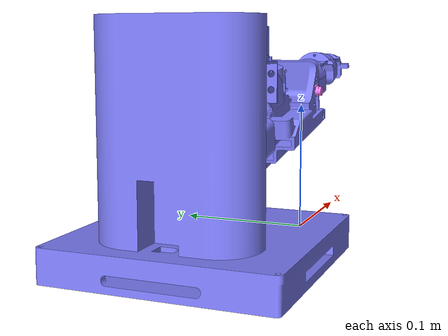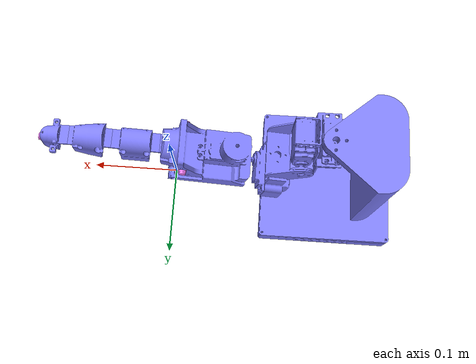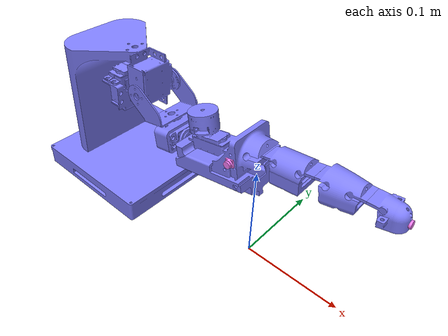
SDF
<?xml version="1.0" ?>
<sdf version="1.6">
	<model name="Arm" canonical_link='tower'>
		<link name="tower">
			<self_collide>false</self_collide>
			<pose relative_to='__model__'>0.0 0.0 0.100 0.0 0.0 0.0</pose>
			<inertial>
				<pose>0.0 0.0 0.0 0 0 0</pose>
				<mass>0.7800822049961268</mass>
				<inertia>
					<ixx>0.0008189995972765369</ixx>
					<ixy>-0.0003321188952345544</ixy>
					<ixz>-5.532811351125456e-06</ixz>
					<iyy>0.0008182778100633983</iyy>
					<iyz>-5.094133998022077e-06</iyz>
					<izz>0.0011911804118455984</izz>
				</inertia>
			</inertial>
			<collision name="tower_collision">
				<geometry>
					<mesh>
						<uri>model://Arm/meshes/CAD/tower.stl</uri>
						<scale>0.001 0.001 0.001</scale>
					</mesh>
				</geometry>
			</collision>
			<visual name="tower_visual">
				<geometry>
					<mesh>
						<uri>model://Arm/meshes/CAD/tower.stl</uri>
						<scale>0.001 0.001 0.001</scale>
					</mesh>
				</geometry>
				<material>
					<ambient>0.5 0.5 1.0 1</ambient>
					<diffuse>0.5 0.5 1.0 1</diffuse>
					<specular>0.0 0.0 1.0 1</specular>
				</material>
			</visual>
		</link>
		<link name="wrist_up_down">
			<self_collide>false</self_collide>
			<pose relative_to='tower'>0.0 0.0 0.0 0.0 0.0 0.0</pose>
			<inertial>
				<pose>0.0 0.0 0.0 0 0 0</pose>
				<mass>0.7800822049961268</mass>
				<inertia>
					<ixx>0.0008189995972765369</ixx>
					<ixy>-0.0003321188952345544</ixy>
					<ixz>-5.532811351125456e-06</ixz>
					<iyy>0.0008182778100633983</iyy>
					<iyz>-5.094133998022077e-06</iyz>
					<izz>0.0011911804118455984</izz>
				</inertia>
			</inertial>
			<collision name="wrist_up_down_collision">
				<geometry>
					<mesh>
						<uri>model://Arm/meshes/CAD/wrist_up_down.stl</uri>
						<scale>0.001 0.001 0.001</scale>
					</mesh>
				</geometry>
			</collision>
			<visual name="wrist_up_down_visual">
				<geometry>
					<mesh>
						<uri>model://Arm/meshes/CAD/wrist_up_down.stl</uri>
						<scale>0.001 0.001 0.001</scale>
					</mesh>
				</geometry>
				<material>
					<ambient>0.5 0.5 1.0 1</ambient>
					<diffuse>0.5 0.5 1.0 1</diffuse>
					<specular>0.0 0.0 1.0 1</specular>
				</material>
			</visual>
		</link>
		<link name="wrist_rotation">
			<self_collide>false</self_collide>
			<pose relative_to='wrist_up_down'>0.0 0.0 0.0 0.0 0.0 0.0</pose>
			<inertial>
				<pose>0.0 0.0 0.0 0 0 0</pose>
				<mass>0.7800822049961268</mass>
				<inertia>
					<ixx>0.0008189995972765369</ixx>
					<ixy>-0.0003321188952345544</ixy>
					<ixz>-5.532811351125456e-06</ixz>
					<iyy>0.0008182778100633983</iyy>
					<iyz>-5.094133998022077e-06</iyz>
					<izz>0.0011911804118455984</izz>
				</inertia>
			</inertial>
			<collision name="wrist_rotation_collision">
				<geometry>
					<mesh>
						<uri>model://Arm/meshes/CAD/wrist_rotation.stl</uri>
						<scale>0.001 0.001 0.001</scale>
					</mesh>
				</geometry>
			</collision>
			<visual name="wrist_rotation_visual">
				<geometry>
					<mesh>
						<uri>model://Arm/meshes/CAD/wrist_rotation.stl</uri>
						<scale>0.001 0.001 0.001</scale>
					</mesh>
				</geometry>
				<material>
					<ambient>0.5 0.5 1.0 1</ambient>
					<diffuse>0.5 0.5 1.0 1</diffuse>
					<specular>0.0 0.0 1.0 1</specular>
				</material>
			</visual>
		</link>
		<link name="finger_base">
			<self_collide>false</self_collide>
			<pose relative_to='wrist_rotation'>0.0 0.0 0.0 0.0 0.0 0.0</pose>
			<inertial>
				<pose>0.0 0.0 0.0 0 0 0</pose>
				<mass>0.128949218150533</mass>
				<inertia>
					<ixx>1.3336947843685135e-05</ixx>
					<ixy>2.6381911721746838e-06</ixy>
					<ixz>-1.1575411658425877e-09</ixz>
					<iyy>2.3658235645015537e-05</iyy>
					<iyz>1.2349325959428327e-09</iyz>
					<izz>2.068821289453926e-05</izz>
				</inertia>
			</inertial>
			<collision name="finger_base_collision">
				<geometry>
					<mesh>
						<uri>model://Arm/meshes/CAD/finger_base.stl</uri>
						<scale>0.001 0.001 0.001</scale>
					</mesh>
				</geometry>
			</collision>
			<visual name="finger_base_visual">
				<geometry>
					<mesh>
						<uri>model://Arm/meshes/CAD/finger_base.stl</uri>
						<scale>0.001 0.001 0.001</scale>
					</mesh>
				</geometry>
				<material>
					<ambient>0.5 0.5 1.0 1</ambient>
					<diffuse>0.5 0.5 1.0 1</diffuse>
					<specular>0.0 0.0 1.0 1</specular>
				</material>
			</visual>
		</link>
		<link name="base_finger_camera_side_1">
			<self_collide>false</self_collide>
			<pose relative_to='finger_base'>-0.018 -0.018 0.013 0.0 -0.2 0.0</pose>
			<inertial>
				<mass>0.0001</mass>
				<inertia> <!-- inertias are tricky to compute -->
					<!-- http://gazebosim.org/tutorials?tut=inertia&cat=build_robot -->
					<ixx>0.0000083</ixx>       <!-- for a box: ixx = 0.083 * mass * (y*y + z*z) -->
					<ixy>0.0</ixy>         <!-- for a box: ixy = 0 -->
					<ixz>0.0</ixz>         <!-- for a box: ixz = 0 -->
					<iyy>0.0000083</iyy>       <!-- for a box: iyy = 0.083 * mass * (x*x + z*z) -->
					<iyz>0.0</iyz>         <!-- for a box: iyz = 0 -->
					<izz>0.0000083</izz>       <!-- for a box: izz = 0.083 * mass * (x*x + y*y) -->
				</inertia>
			</inertial>
			<collision name="base_finger_camera_side_1_collision">
				<geometry>
					<mesh>
						<uri>model://Arm/meshes/CAD/ov2640.stl</uri>
						<scale>0.001 0.001 0.001</scale>
					</mesh>
				</geometry>
			</collision>
			<visual name="base_finger_camera_side_1_visual">
				<geometry>
					<mesh>
						<uri>model://Arm/meshes/CAD/ov2640.stl</uri>
						<scale>0.001 0.001 0.001</scale>
					</mesh>
				</geometry>
				<material>
					<ambient>1.0 0.5 1.0 1</ambient>
					<diffuse>1.0 0.5 1.0 1</diffuse>
					<specular>0.0 0.0 1.0 1</specular>
				</material>
			</visual>
			<sensor name="base_finger_camera_side_1_sensor" type="camera">
				<pose relative_to='base_finger_camera_side_1'>0 0 0 0.0 0.0 -1.5708</pose>
				<camera>
					<horizontal_fov>1.047</horizontal_fov>
					<image>
						<width>100</width>
						<height>100</height>
					</image>
					<clip>
						<near>0.1</near>
						<far>100</far>
					</clip>
				</camera>
				<always_on>1</always_on>
				<update_rate>10</update_rate>
				<visualize>true</visualize>
				<topic>base_finger_camera_side_1/image</topic>
			</sensor>
		</link>
		<link name="base_finger_camera_side_2">
			<self_collide>false</self_collide>
			<pose relative_to='finger_base'>-0.018 0.032 0.013 0.0 0.2 3.14159265359</pose>
			<inertial>
				<mass>0.0001</mass>
				<inertia> <!-- inertias are tricky to compute -->
					<!-- http://gazebosim.org/tutorials?tut=inertia&cat=build_robot -->
					<ixx>0.0000083</ixx>       <!-- for a box: ixx = 0.083 * mass * (y*y + z*z) -->
					<ixy>0.0</ixy>         <!-- for a box: ixy = 0 -->
					<ixz>0.0</ixz>         <!-- for a box: ixz = 0 -->
					<iyy>0.0000083</iyy>       <!-- for a box: iyy = 0.083 * mass * (x*x + z*z) -->
					<iyz>0.0</iyz>         <!-- for a box: iyz = 0 -->
					<izz>0.0000083</izz>       <!-- for a box: izz = 0.083 * mass * (x*x + y*y) -->
				</inertia>
			</inertial>
			<collision name="base_finger_camera_side_2_collision">
				<geometry>
					<mesh>
						<uri>model://Arm/meshes/CAD/ov2640.stl</uri>
						<scale>0.001 0.001 0.001</scale>
					</mesh>
				</geometry>
			</collision>
			<visual name="base_finger_camera_side_2_visual">
				<geometry>
					<mesh>
						<uri>model://Arm/meshes/CAD/ov2640.stl</uri>
						<scale>0.001 0.001 0.001</scale>
					</mesh>
				</geometry>
				<material>
					<ambient>1.0 0.5 1.0 1</ambient>
					<diffuse>1.0 0.5 1.0 1</diffuse>
					<specular>0.0 0.0 1.0 1</specular>
				</material>
			</visual>
			<sensor name="base_finger_camera_side_2_sensor" type="camera">
				<pose relative_to='base_finger_camera_side_1'>0 0 0 0.0 0.0 1.5708</pose>
				<camera>
					<horizontal_fov>1.047</horizontal_fov>
					<image>
						<width>100</width>
						<height>100</height>
					</image>
					<clip>
						<near>0.1</near>
						<far>100</far>
					</clip>
				</camera>
				<always_on>1</always_on>
				<update_rate>10</update_rate>
				<visualize>true</visualize>
				<topic>base_finger_camera_side_2/image</topic>
			</sensor>
		</link>
		<link name="base_side_middle_finger">
			<self_collide>false</self_collide>
			<pose relative_to='finger_base'>0.0 0.0 0.0 0.0 0.0 0.0</pose>
			<inertial>
				<pose>0.0 0.0 0.0 0 0 0</pose>
				<mass>0.12894921828212288</mass>
				<inertia>
					<ixx>1.3340731146245855e-05</ixx>
					<ixy>2.640026584155514e-06</ixy>
					<ixz>-1.157551999311779e-09</ixz>
					<iyy>2.3658236576714398e-05</iyy>
					<iyz>1.1711211688438666e-09</iyz>
					<izz>2.0691997124651706e-05</izz>
				</inertia>
			</inertial>
			<collision name="base_side_middle_finger_collision">
				<geometry>
					<mesh>
						<uri>model://Arm/meshes/CAD/base_side_middle_finger.stl</uri>
						<scale>0.001 0.001 0.001</scale>
					</mesh>
				</geometry>
			</collision>
			<visual name="base_side_middle_finger_visual">
				<geometry>
					<mesh>
						<uri>model://Arm/meshes/CAD/base_side_middle_finger.stl</uri>
						<scale>0.001 0.001 0.001</scale>
					</mesh>
				</geometry>
				<material>
					<ambient>0.5 0.5 1.0 1</ambient>
					<diffuse>0.5 0.5 1.0 1</diffuse>
					<specular>0.0 0.0 1.0 1</specular>
				</material>
			</visual>
		</link>
		<link name="base_side_middle_finger_camera">
			<self_collide>false</self_collide>
			<pose relative_to='base_side_middle_finger'>0.032 0.008 0.005 1.5708 -0.1 0</pose>
			<inertial>
				<mass>0.0001</mass>
				<inertia> <!-- inertias are tricky to compute -->
					<!-- http://gazebosim.org/tutorials?tut=inertia&cat=build_robot -->
					<ixx>0.0000083</ixx>       <!-- for a box: ixx = 0.083 * mass * (y*y + z*z) -->
					<ixy>0.0</ixy>         <!-- for a box: ixy = 0 -->
					<ixz>0.0</ixz>         <!-- for a box: ixz = 0 -->
					<iyy>0.0000083</iyy>       <!-- for a box: iyy = 0.083 * mass * (x*x + z*z) -->
					<iyz>0.0</iyz>         <!-- for a box: iyz = 0 -->
					<izz>0.0000083</izz>       <!-- for a box: izz = 0.083 * mass * (x*x + y*y) -->
				</inertia>
			</inertial>
			<collision name="base_side_middle_finger_camera_collision">
				<geometry>
					<mesh>
						<uri>model://Arm/meshes/CAD/ov2640.stl</uri>
						<scale>0.001 0.001 0.001</scale>
					</mesh>
				</geometry>
			</collision>
			<visual name="base_side_middle_finger_camera_visual">
				<geometry>
					<mesh>
						<uri>model://Arm/meshes/CAD/ov2640.stl</uri>
						<scale>0.001 0.001 0.001</scale>
					</mesh>
				</geometry>
				<material>
					<ambient>1.0 0.5 1.0 1</ambient>
					<diffuse>1.0 0.5 1.0 1</diffuse>
					<specular>0.0 0.0 1.0 1</specular>
				</material>
			</visual>
			<sensor name="base_side_middle_finger_camera_sensor" type="camera">
				<pose relative_to='base_side_middle_finger_camera'>0 0 0 0.0 0.0 -1.5708</pose>
				<camera>
					<horizontal_fov>1.047</horizontal_fov>
					<image>
						<width>100</width>
						<height>100</height>
					</image>
					<clip>
						<near>0.1</near>
						<far>100</far>
					</clip>
				</camera>
				<always_on>1</always_on>
				<update_rate>10</update_rate>
				<visualize>true</visualize>
				<topic>base_side_middle_finger_camera/image</topic>
			</sensor>
		</link>
		<link name="tip_side_middle_finger">
			<self_collide>false</self_collide>
			<pose relative_to='base_side_middle_finger'>0.0 0.0 0.0 0.0 0.0 0.0</pose>
			<inertial>
				<pose>0.0 0.0 0.0 0 0 0</pose>
				<mass>0.12894921828212288</mass>
				<inertia>
					<ixx>1.3340731146245855e-05</ixx>
					<ixy>2.640026584155514e-06</ixy>
					<ixz>-1.157551999311779e-09</ixz>
					<iyy>2.3658236576714398e-05</iyy>
					<iyz>1.1711211688438666e-09</iyz>
					<izz>2.0691997124651706e-05</izz>
				</inertia>
			</inertial>
			<collision name="tip_side_middle_finger_collision">
				<geometry>
					<mesh>
						<uri>model://Arm/meshes/CAD/tip_side_middle_finger.stl</uri>
						<scale>0.001 0.001 0.001</scale>
					</mesh>
				</geometry>
			</collision>
			<visual name="tip_side_middle_finger_visual">
				<geometry>
					<mesh>
						<uri>model://Arm/meshes/CAD/tip_side_middle_finger.stl</uri>
						<scale>0.001 0.001 0.001</scale>
					</mesh>
				</geometry>
				<material>
					<ambient>0.5 0.5 1.0 1</ambient>
					<diffuse>0.5 0.5 1.0 1</diffuse>
					<specular>0.0 0.0 1.0 1</specular>
				</material>
			</visual>
		</link>
		<link name="tip_side_middle_finger_camera">
			<self_collide>false</self_collide>
			<pose relative_to='tip_side_middle_finger'>0.080 0.008 0.015 1.5708 -0.1 0</pose>
			<inertial>
				<mass>0.0001</mass>
				<inertia> <!-- inertias are tricky to compute -->
					<!-- http://gazebosim.org/tutorials?tut=inertia&cat=build_robot -->
					<ixx>0.0000083</ixx>       <!-- for a box: ixx = 0.083 * mass * (y*y + z*z) -->
					<ixy>0.0</ixy>         <!-- for a box: ixy = 0 -->
					<ixz>0.0</ixz>         <!-- for a box: ixz = 0 -->
					<iyy>0.0000083</iyy>       <!-- for a box: iyy = 0.083 * mass * (x*x + z*z) -->
					<iyz>0.0</iyz>         <!-- for a box: iyz = 0 -->
					<izz>0.0000083</izz>       <!-- for a box: izz = 0.083 * mass * (x*x + y*y) -->
				</inertia>
			</inertial>
			<collision name="tip_side_middle_finger_camera_collision">
				<geometry>
					<mesh>
						<uri>model://Arm/meshes/CAD/ov2640.stl</uri>
						<scale>0.001 0.001 0.001</scale>
					</mesh>
				</geometry>
			</collision>
			<visual name="tip_side_middle_finger_camera_visual">
				<geometry>
					<mesh>
						<uri>model://Arm/meshes/CAD/ov2640.stl</uri>
						<scale>0.001 0.001 0.001</scale>
					</mesh>
				</geometry>
				<material>
					<ambient>1.0 0.5 1.0 1</ambient>
					<diffuse>1.0 0.5 1.0 1</diffuse>
					<specular>0.0 0.0 1.0 1</specular>
				</material>
			</visual>
			<sensor name="tip_side_middle_finger_camera_sensor" type="camera">
				<pose relative_to='tip_side_middle_finger_camera'>0 0 0 0.0 0.0 -1.5708</pose>
				<camera>
					<horizontal_fov>1.047</horizontal_fov>
					<image>
						<width>100</width>
						<height>100</height>
					</image>
					<clip>
						<near>0.1</near>
						<far>100</far>
					</clip>
				</camera>
				<always_on>1</always_on>
				<update_rate>10</update_rate>
				<visualize>true</visualize>
				<topic>tip_side_middle_finger_camera/image</topic>
			</sensor>
		</link>
		<link name="finger_tip">
			<self_collide>false</self_collide>
			<pose relative_to='tip_side_middle_finger'>0.0 0.0 0.0 0.0 0.0 0.0</pose>
			<inertial>
				<pose>0.0 0.0 0.0 0 0 0</pose>
				<mass>0.0510965513982137</mass>
				<inertia>
					<ixx>3.859598389065379e-06</ixx>
					<ixy>1.0610151268752532e-06</ixy>
					<ixz>-2.588027822672534e-11</ixz>
					<iyy>5.608124521502678e-06</iyy>
					<iyz>1.990000540489853e-11</iyz>
					<izz>5.682590632321194e-06</izz>
				</inertia>
			</inertial>
			<collision name="finger_tip_collision">
				<geometry>
					<mesh>
						<uri>model://Arm/meshes/CAD/finger_tip.stl</uri>
						<scale>0.001 0.001 0.001</scale>
					</mesh>
				</geometry>
			</collision>
			<visual name="finger_tip_visual">
				<geometry>
					<mesh>
						<uri>model://Arm/meshes/CAD/finger_tip.stl</uri>
						<scale>0.001 0.001 0.001</scale>
					</mesh>
				</geometry>
				<material>
					<ambient>0.5 0.5 1.0 1</ambient>
					<diffuse>0.5 0.5 1.0 1</diffuse>
					<specular>0.0 0.0 1.0 1</specular>
				</material>
			</visual>
		</link>
		<link name="finger_tip_down_camera">
			<self_collide>false</self_collide>
			<pose relative_to='finger_tip'>0.118 0.008 0.018 1.5708 -0.1 0</pose>
			<inertial>
				<mass>0.0001</mass>
				<inertia> <!-- inertias are tricky to compute -->
					<!-- http://gazebosim.org/tutorials?tut=inertia&cat=build_robot -->
					<ixx>0.0000083</ixx>       <!-- for a box: ixx = 0.083 * mass * (y*y + z*z) -->
					<ixy>0.0</ixy>         <!-- for a box: ixy = 0 -->
					<ixz>0.0</ixz>         <!-- for a box: ixz = 0 -->
					<iyy>0.0000083</iyy>       <!-- for a box: iyy = 0.083 * mass * (x*x + z*z) -->
					<iyz>0.0</iyz>         <!-- for a box: iyz = 0 -->
					<izz>0.0000083</izz>       <!-- for a box: izz = 0.083 * mass * (x*x + y*y) -->
				</inertia>
			</inertial>
			<collision name="finger_tip_down_camera_collision">
				<geometry>
					<mesh>
						<uri>model://Arm/meshes/CAD/ov2640.stl</uri>
						<scale>0.001 0.001 0.001</scale>
					</mesh>
				</geometry>
			</collision>
			<visual name="finger_tip_down_camera_visual">
				<geometry>
					<mesh>
						<uri>model://Arm/meshes/CAD/ov2640.stl</uri>
						<scale>0.001 0.001 0.001</scale>
					</mesh>
				</geometry>
				<material>
					<ambient>1.0 0.5 1.0 1</ambient>
					<diffuse>1.0 0.5 1.0 1</diffuse>
					<specular>0.0 0.0 1.0 1</specular>
				</material>
			</visual>
			<sensor name="finger_tip_down_camera_sensor" type="camera">
				<pose relative_to='finger_tip_down_camera'>0 0 0 0.0 0.0 -1.5708</pose>
				<camera>
					<horizontal_fov>1.047</horizontal_fov>
					<image>
						<width>100</width>
						<height>100</height>
					</image>
					<clip>
						<near>0.1</near>
						<far>100</far>
					</clip>
				</camera>
				<always_on>1</always_on>
				<update_rate>10</update_rate>
				<visualize>true</visualize>
				<topic>finger_tip_down_camera/image</topic>
			</sensor>
		</link>
		<link name="finger_tip_forward_camera">
			<self_collide>false</self_collide>
			<pose relative_to='finger_tip'>0.128 0.008 0.025 1.5708 -1.6708 0</pose>
			<inertial>
				<mass>0.0001</mass>
				<inertia> <!-- inertias are tricky to compute -->
					<!-- http://gazebosim.org/tutorials?tut=inertia&cat=build_robot -->
					<ixx>0.0000083</ixx>       <!-- for a box: ixx = 0.083 * mass * (y*y + z*z) -->
					<ixy>0.0</ixy>         <!-- for a box: ixy = 0 -->
					<ixz>0.0</ixz>         <!-- for a box: ixz = 0 -->
					<iyy>0.0000083</iyy>       <!-- for a box: iyy = 0.083 * mass * (x*x + z*z) -->
					<iyz>0.0</iyz>         <!-- for a box: iyz = 0 -->
					<izz>0.0000083</izz>       <!-- for a box: izz = 0.083 * mass * (x*x + y*y) -->
				</inertia>
			</inertial>
			<collision name="finger_tip_forward_camera_collision">
				<geometry>
					<mesh>
						<uri>model://Arm/meshes/CAD/ov2640.stl</uri>
						<scale>0.001 0.001 0.001</scale>
					</mesh>
				</geometry>
			</collision>
			<visual name="finger_tip_forward_camera_visual">
				<geometry>
					<mesh>
						<uri>model://Arm/meshes/CAD/ov2640.stl</uri>
						<scale>0.001 0.001 0.001</scale>
					</mesh>
				</geometry>
				<material>
					<ambient>1.0 0.5 1.0 1</ambient>
					<diffuse>1.0 0.5 1.0 1</diffuse>
					<specular>0.0 0.0 1.0 1</specular>
				</material>
			</visual>
			<sensor name="finger_tip_forward_camera_sensor" type="camera">
				<pose relative_to='finger_tip_forward_camera'>0 0 0 0.0 0.0 -1.5708</pose>
				<camera>
					<horizontal_fov>1.047</horizontal_fov>
					<image>
						<width>100</width>
						<height>100</height>
					</image>
					<clip>
						<near>0.1</near>
						<far>100</far>
					</clip>
				</camera>
				<always_on>1</always_on>
				<update_rate>10</update_rate>
				<visualize>true</visualize>
				<topic>finger_tip_forward_camera/image</topic>
			</sensor>
		</link>
		<joint name="world_fixed" type="fixed"> <!-- Fixes the base of the arm -->
			<parent>world</parent>
			<child>tower</child>
		</joint>
		<joint name="wrist_up_down_to_tower" type="revolute">
			<parent>tower</parent>
			<child>wrist_up_down</child>
			<pose relative_to='tower'>-0.165 0.01 0.0 0 0 0</pose>
			<axis>
				<xyz expressed_in='tower'>0 0 1</xyz>
				<limit>
					<lower>-3.14159265359</lower>
					<upper>3.14159265359</upper>
				</limit>
			</axis>
		</joint>
		<joint name="wrist_rotation_to_wrist_up_down" type="revolute">
			<parent>wrist_up_down</parent>
			<child>wrist_rotation</child>
			<pose relative_to='wrist_up_down'>-0.139 0 0.031 0 0 0</pose>
			<axis>
				<xyz expressed_in='wrist_up_down'>0 1 0</xyz>
				<limit>
					<lower>-3.14159265359</lower>
					<upper>3.14159265359</upper>
				</limit>
			</axis>
		</joint>
		<joint name="finger_base_to_wrist_rotation" type="revolute">
			<parent>wrist_rotation</parent>
			<child>finger_base</child>
			<!-- TODO - fix this pose to revolve around the correct point -->
			<pose relative_to='wrist_rotation'>0 0.005 0.012 0 0 0</pose>
			<axis>
				<xyz expressed_in='wrist_rotation'>0.95 0.0.31225 0</xyz>
				<limit>
					<lower>-3.14159265359</lower>
					<upper>3.14159265359</upper>
				</limit>
			</axis>
		</joint>
		<joint name="base_side_middle_finger_to_finger_base" type="revolute">
			<parent>finger_base</parent>
			<child>base_side_middle_finger</child>
			<!-- TODO - fix this pose to revolve around the correct point -->
			<pose relative_to='finger_base'>0.007 0 0.0255 0 0 0</pose>
			<axis>
				<xyz expressed_in='finger_base'>0 1 0</xyz>
				<limit>
					<lower>-1.5708</lower>
					<upper>1.5708</upper>
				</limit>
			</axis>
		</joint>
		<joint name="tip_side_middle_finger_to_base_side_middle_finger" type="revolute">
			<parent>base_side_middle_finger</parent>
			<child>tip_side_middle_finger</child>
			<pose relative_to='base_side_middle_finger'>0.0557 0 0.03 0 0 0</pose>
			<axis>
				<xyz expressed_in='base_side_middle_finger'>0 1 0</xyz>
				<limit>
					<lower>-1.5708</lower>
					<upper>1.5708</upper>
				</limit>
			</axis>
		</joint>
		<joint name="finger_tip_to_tip_side_middle_finger" type="revolute">
			<parent>tip_side_middle_finger</parent>
			<child>finger_tip</child>
			<!-- TODO - fix this pose to revolve around the correct point -->
			<pose relative_to='tip_side_middle_finger'>0.0982 0 0.032 0 0 0</pose>
			<axis>
				<xyz expressed_in='tip_side_middle_finger'>0 1 0</xyz>
				<limit>
					<lower>-1.5708</lower>
					<upper>1.5708</upper>
				</limit>
			</axis>
		</joint>
		<!-- Camera Joints -->
		<joint name="base_finger_camera_side_1_joint" type="fixed">
			<parent>finger_base</parent>
			<child>base_finger_camera_side_1</child>
			<pose relative_to='finger_base'>0 0 0 0 0 0</pose>
		</joint>
		<joint name="base_finger_camera_side_2_joint" type="fixed">
			<parent>finger_base</parent>
			<child>base_finger_camera_side_2</child>
			<pose relative_to='finger_base'>0 0 0 0 0 0</pose>
		</joint>
		<joint name="base_side_middle_finger_camera_joint" type="fixed">
			<parent>base_side_middle_finger</parent>
			<child>base_side_middle_finger_camera</child>
			<pose relative_to='base_side_middle_finger'>0 0 0 0 0 0</pose>
		</joint>
		<joint name="tip_side_middle_finger_camera_joint" type="fixed">
			<parent>tip_side_middle_finger</parent>
			<child>tip_side_middle_finger_camera</child>
			<pose relative_to='tip_side_middle_finger'>0 0 0 0 0 0</pose>
		</joint>
		<joint name="finger_tip_forward_camera_joint" type="fixed">
			<parent>finger_tip</parent>
			<child>finger_tip_forward_camera</child>
			<pose relative_to='finger_tip'>0 0 0 0 0 0</pose>
		</joint>
		<joint name="finger_tip_down_camera_joint" type="fixed">
			<parent>finger_tip</parent>
			<child>finger_tip_down_camera</child>
			<pose relative_to='finger_tip'>0 0 0 0 0 0</pose>
		</joint>

		<plugin filename="libBabyRobot.so" name="gz::sim::systems::BabyRobot">
			<has_temperature>false</has_temperature>
			<has_current>false</has_current>
			<has_actuator_1>true</has_actuator_1>
			<joint_name_1_1>wrist_up_down_to_tower</joint_name_1_1>
			<pid_1_p>10</pid_1_p>
			<pid_1_i>0.9</pid_1_i>
			<pid_1_d>0.5</pid_1_d>
			<pid_1_imin>-10</pid_1_imin>
			<pid_1_imax>10</pid_1_imax>
			<min_command_1>-1.5708</min_command_1> <!-- -90 deg -->
			<max_command_1>1.5708</max_command_1> <!-- 90 deg -->
			<has_camera>true</has_camera>
			<ms_check_camera>100</ms_check_camera>
			<camera_topic>/base_side_middle_finger_camera/image</camera_topic>
			<listen_port>1200</listen_port>
			<send_port>1201</send_port>
			<remote_port>1100</remote_port>
			<remote_ip>127.0.0.1</remote_ip>
			<mac_address>1.2.3.0.0.0</mac_address>
		</plugin>
		<plugin filename="libBabyRobot.so" name="gz::sim::systems::BabyRobot">
			<has_temperature>false</has_temperature>
			<has_current>false</has_current>
			<has_actuator_1>true</has_actuator_1>
			<joint_name_1_1>wrist_rotation_to_wrist_up_down</joint_name_1_1>
			<pid_1_p>20</pid_1_p>
			<pid_1_i>0.9</pid_1_i>
			<pid_1_d>0.5</pid_1_d>
			<pid_1_imin>-10</pid_1_imin>
			<pid_1_imax>10</pid_1_imax>
			<min_command_1>-1.5708</min_command_1> <!-- -90 deg -->
			<max_command_1>1.5708</max_command_1> <!-- 90 deg -->
			<has_camera>true</has_camera>
			<ms_check_camera>100</ms_check_camera>
			<camera_topic>/tip_side_middle_finger_camera/image</camera_topic>
			<listen_port>1210</listen_port>
			<send_port>1211</send_port>
			<remote_port>1100</remote_port>
			<remote_ip>127.0.0.1</remote_ip>
			<mac_address>1.2.3.1.0.0</mac_address>
		</plugin>
		<plugin filename="libBabyRobot.so" name="gz::sim::systems::BabyRobot">
			<has_temperature>false</has_temperature>
			<has_current>false</has_current>
			<has_actuator_1>true</has_actuator_1>
			<joint_name_1_1>finger_base_to_wrist_rotation</joint_name_1_1>
			<pid_1_p>1</pid_1_p>
			<pid_1_i>0.3</pid_1_i>
			<pid_1_d>0.1</pid_1_d>
			<pid_1_imin>-10</pid_1_imin>
			<pid_1_imax>10</pid_1_imax>
			<min_command_1>-1.5708</min_command_1> <!-- -90 deg -->
			<max_command_1>1.5708</max_command_1> <!-- 90 deg -->
			<has_camera>true</has_camera>
			<ms_check_camera>100</ms_check_camera>
			<camera_topic>/finger_tip_down_camera/image</camera_topic>
			<listen_port>1220</listen_port>
			<send_port>1221</send_port>
			<remote_port>1100</remote_port>
			<remote_ip>127.0.0.1</remote_ip>
			<mac_address>1.2.3.2.0.0</mac_address>
		</plugin>
		<plugin filename="libBabyRobot.so" name="gz::sim::systems::BabyRobot">
			<has_temperature>false</has_temperature>
			<has_current>false</has_current>
			<has_actuator_1>true</has_actuator_1>
			<joint_name_1_1>base_side_middle_finger_to_finger_base</joint_name_1_1>
			<joint_name_1_2>tip_side_middle_finger_to_base_side_middle_finger</joint_name_1_2>
			<joint_name_1_3>finger_tip_to_tip_side_middle_finger</joint_name_1_3>
			<pid_1_p>1.0</pid_1_p>
			<pid_1_i>0.3</pid_1_i>
			<pid_1_d>0.1</pid_1_d>
			<pid_1_imin>-10</pid_1_imin>
			<pid_1_imax>10</pid_1_imax>
			<min_command_1>-1.0472</min_command_1> <!-- -60 deg -->
			<max_command_1>1.0472</max_command_1> <!-- 60 deg -->
			<has_camera>true</has_camera>
			<ms_check_camera>100</ms_check_camera>
			<camera_topic>/finger_tip_forward_camera/image</camera_topic>
			<listen_port>1230</listen_port>
			<send_port>1231</send_port>
			<remote_port>1100</remote_port>
			<remote_ip>127.0.0.1</remote_ip>
			<mac_address>1.2.3.3.0.0</mac_address>
		</plugin>

	</model>
</sdf>
